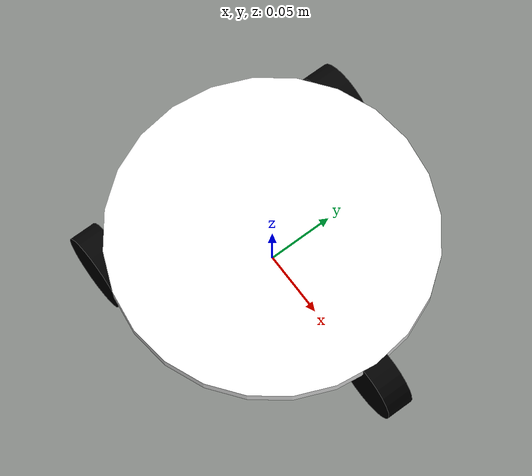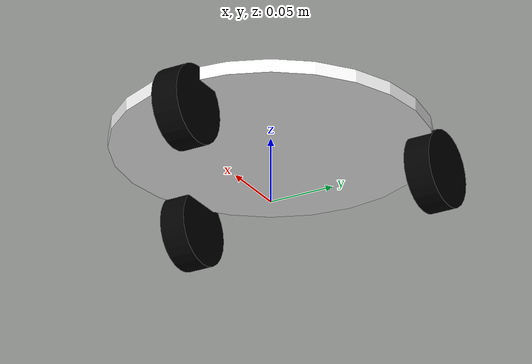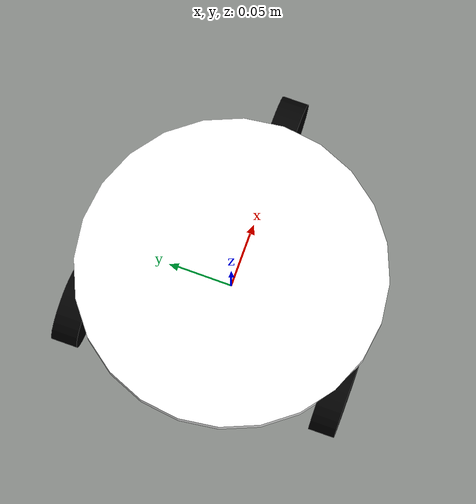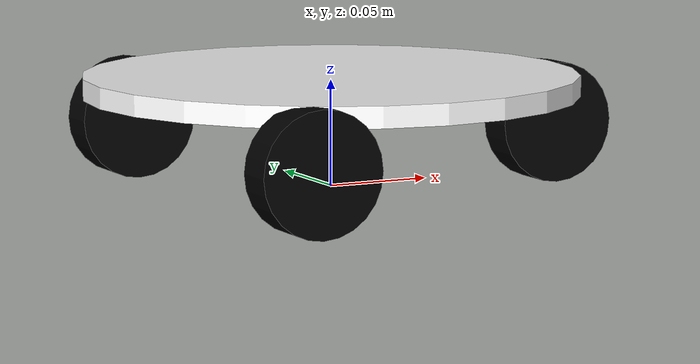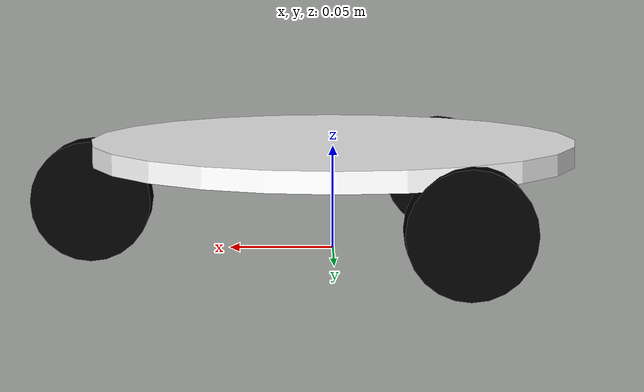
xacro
<?xml version="1.0"?>

<robot name="table"
    xmlns:xi="http://www.w3.org/2001/XInclude"
    xmlns:gazebo="http://playerstage.sourceforge.net/gazebo/xmlschema/#gz"
    xmlns:model="http://playerstage.sourceforge.net/gazebo/xmlschema/#model"
    xmlns:sensor="http://playerstage.sourceforge.net/gazebo/xmlschema/#sensor"
    xmlns:body="http://playerstage.sourceforge.net/gazebo/xmlschema/#body"
    xmlns:geom="http://playerstage.sourceforge.net/gazebo/xmlschema/#geom"
    xmlns:joint="http://playerstage.sourceforge.net/gazebo/xmlschema/#joint"
    xmlns:controller="http://playerstage.sourceforge.net/gazebo/xmlschema/#controller"

    xmlns:interface="http://playerstage.sourceforge.net/gazebo/xmlschema/#interface"
    xmlns:rendering="http://playerstage.sourceforge.net/gazebo/xmlschema/#rendering"
    xmlns:renderable="http://playerstage.sourceforge.net/gazebo/xmlschema/#renderable"

    xmlns:physics="http://playerstage.sourceforge.net/gazebo/xmlschema/#physics"
    xmlns:xacro="http://ros.org/wiki/xacro">

    <property name="M_PI" value="3.1415926535897931"/>

    <link name="base_link">
      <inertial>
        <mass value="1.0" />
        <origin rpy="0 0 1.57075" xyz="0 0 0"/>
        <inertia ixx="1" ixy="0"  ixz="0"
                 iyy="1" iyz="0"
                 izz="1" />
      </inertial>
      <visual>
        <geometry>
          <cylinder length=".01" radius="0.117"/>
        </geometry>
        <origin rpy="0 0 1.57075" xyz="0 0 0.048"/>
        <material name="blue">
          <color rgba="1 1 1 1"/>
        </material>
      </visual>
    </link>

    <joint name="front_wheel_joint" type="continuous">
      <axis xyz="0 0 1"/>
      <parent link="base_link"/>
      <child link="front_wheel"/>
      <origin rpy="1.57075 1.57075 0" xyz="0.117 0 0.024"/>
      <joint_properties damping="0.0" friction="0.0"/>
    </joint>
    <link name="front_wheel">
      <inertial>
        <mass value="1.0" />
        <origin rpy="0 0 1.57075" xyz="0 0 0"/>
        <inertia ixx="1" ixy="0"  ixz="0"
                 iyy="1" iyz="0"
                 izz="1" />
      </inertial>
      <visual>
        <geometry>
          <cylinder length=".02" radius="0.029"/>
        </geometry>
        <origin rpy="0 0 1.57075" xyz="0 0 0"/>
        <material name="black">
          <color rgba="0 0 0 1"/>
        </material>
      </visual>
    </link>

    <joint name="behind_left_wheel_joint" type="continuous">
      <axis xyz="0 0 1"/>
      <parent link="base_link"/>
      <child link="behind_left_wheel"/>
      <origin rpy="1.57075 1.57075 0" xyz="-0.0585 0.1013 0.024"/>
      <joint_properties damping="0.0" friction="0.0"/>
    </joint>
    <link name="behind_left_wheel">
      <inertial>
        <mass value="1.0" />
        <origin rpy="0 0 1.57075" xyz="0 0 0"/>
        <inertia ixx="1" ixy="0"  ixz="0"
                 iyy="1" iyz="0"
                 izz="1" />
      </inertial>
      <visual>
        <geometry>
          <cylinder length=".02" radius="0.029"/>
        </geometry>
        <origin rpy="0 0 1.57075" xyz="0 0 0"/>
        <material name="black">
          <color rgba="0 0 0 1"/>
        </material>
      </visual>
    </link>

    <joint name="behind_right_wheel_joint" type="continuous">
      <axis xyz="0 0 1"/>
      <parent link="base_link"/>
      <child link="behind_right_wheel"/>
      <origin rpy="1.57075 1.57075 0" xyz="-0.0585 -0.1013 0.024"/>
      <joint_properties damping="0.0" friction="0.0"/>
    </joint>
    <link name="behind_right_wheel">
      <inertial>
        <mass value="1.0" />
        <origin rpy="0 0 1.57075" xyz="0 0 0"/>
        <inertia ixx="1" ixy="0"  ixz="0"
                 iyy="1" iyz="0"
                 izz="1" />
      </inertial>
      <visual>
        <geometry>
          <cylinder length=".02" radius="0.029"/>
        </geometry>
        <origin rpy="0 0 1.57075" xyz="0 0 0"/>
        <material name="black">
          <color rgba="0 0 0 1"/>
        </material>
      </visual>
    </link>

    <gazebo reference="base_link">
        <material>Gazebo/Blue</material>
    </gazebo>

    <gazebo reference="front_wheel">
        <material>Gazebo/FlatBlack</material>
    </gazebo>

    <gazebo reference="behind_left_wheel">
        <material>Gazebo/FlatBlack</material>
    </gazebo>

    <gazebo reference="behind_right_wheel">
        <material>Gazebo/FlatBlack</material>
    </gazebo>

  <gazebo>
    <static>true</static>
    <canonicalBody>base_link</canonicalBody>
  </gazebo>

</robot>
